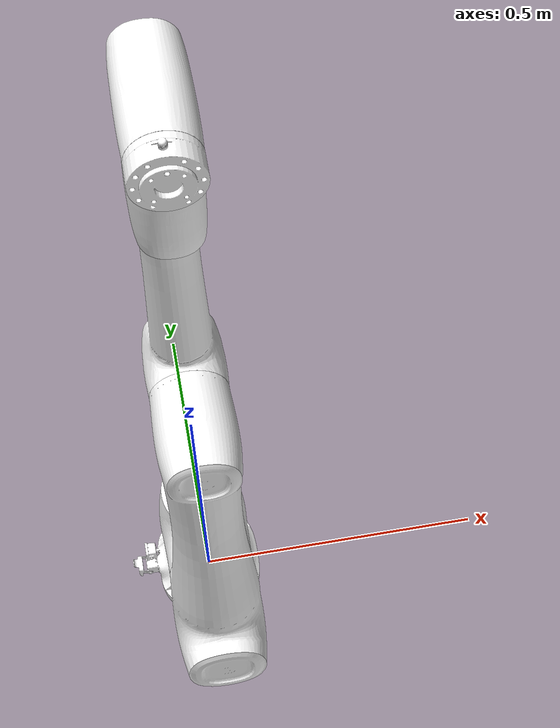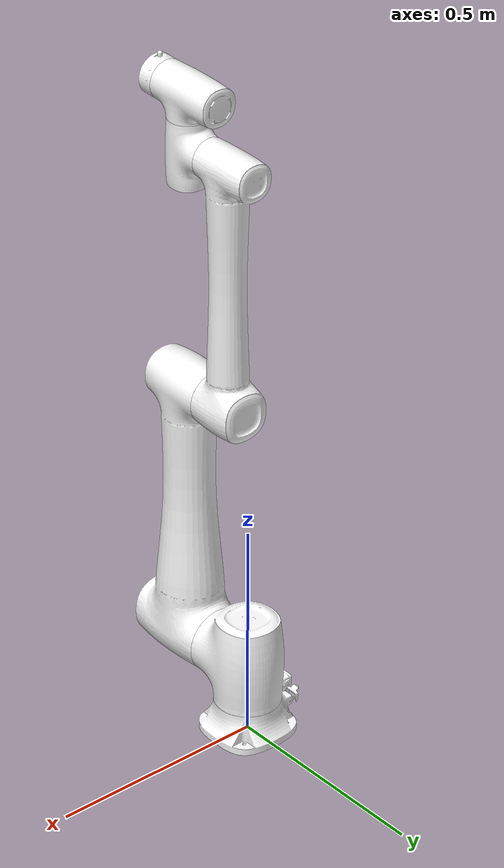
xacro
<?xml version="1.0"?>
<robot name="cr10_robot" xmlns:xacro="http://ros.org/wiki/xacro">

  <link name="dummy_link"/>
  <link
    name="base_link">
    <inertial>
      <origin
        xyz="-0.0017435 -4.7141E-06 0.032774"
        rpy="0 0 0" />
      <mass
        value="1.8265" />
      <inertia
        ixx="0.0041731"
        ixy="5.9354E-07"
        ixz="2.52E-05"
        iyy="0.0043128"
        iyz="-5.4503E-07"
        izz="0.0067702" />
    </inertial>
    <visual>
      <origin
        xyz="0 0 0"
        rpy="0 0 0" />
      <geometry>
        <mesh
          filename="file://$(find cr_description)/meshes/cr10/base_link.STL" />
      </geometry>
      <material
        name="">
        <color
          rgba="1 1 1 1" />
      </material>
    </visual>
    <collision>
      <origin
        xyz="0 0 0"
        rpy="0 0 0" />
      <geometry>
        <mesh
          filename="file://$(find cr_description)/meshes/cr10/base_link.STL" />
      </geometry>
    </collision>
  </link>
  <link  name="world"/>
<joint name="world_joint" type="fixed">
    <parent link="world" />
    <child  link="dummy_link" />
  </joint>

  <joint name="dummy_joint" type="fixed">
    <parent link="dummy_link" />
    <child  link="base_link" />
  </joint>

  <link
    name="Link1">
    <inertial>
      <origin
        xyz="-1.6635E-06 -0.010819 0.0028389"
        rpy="0 0 0" />
      <mass
        value="4.1649" />
      <inertia
        ixx="0.020714"
        ixy="-1.9343E-07"
        ixz="1.6036E-07"
        iyy="0.018824"
        iyz="-9.6731E-05"
        izz="0.014575" />
    </inertial>
    <visual>
      <origin
        xyz="0 0 0"
        rpy="0 0 0" />
      <geometry>
        <mesh
          filename="file://$(find cr_description)/meshes/cr10/Link1.STL" />
      </geometry>
      <material
        name="">
        <color
          rgba="1 1 1 1" />
      </material>
    </visual>
    <collision>
      <origin
        xyz="0 0 0"
        rpy="0 0 0" />
      <geometry>
        <mesh
          filename="file://$(find cr_description)/meshes/cr10/Link1.STL" />
      </geometry>
    </collision>
  </link>
  <joint
    name="joint1"
    type="revolute">
    <origin
      xyz="0 0 0.1765"
      rpy="0 0 0" />
    <parent
      link="base_link" />
    <child
      link="Link1" />
    <axis
      xyz="0 0 1" />
    <limit
      lower="-3.14"
      upper="3.14"
      effort="300"
      velocity="100" />
  </joint>
  <link
    name="Link2">
    <inertial>
      <origin
        xyz="-0.24631 3.5816E-07 0.19515"
        rpy="0 0 0" />
      <mass
        value="11.314" />
      <inertia
        ixx="0.033616"
        ixy="-8.2998E-07"
        ixz="-0.0033352"
        iyy="0.30683"
        iyz="-6.6457E-08"
        izz="0.29972" />
    </inertial>
    <visual>
      <origin
        xyz="0 0 0"
        rpy="0 0 0" />
      <geometry>
        <mesh
          filename="file://$(find cr_description)/meshes/cr10/Link2.STL"  />
      </geometry>
      <material
        name="">
        <color
          rgba="1 1 1 1" />
      </material>
    </visual>
    <collision>
      <origin
        xyz="0 0 0"
        rpy="0 0 0" />
      <geometry>
        <mesh
          filename="file://$(find cr_description)/meshes/cr10/Link2.STL" />
      </geometry>
    </collision>
  </link>
  <joint
    name="joint2"
    type="revolute">
    <origin
      xyz="0 0 0"
      rpy="1.5708 1.5708 0" />
    <parent
      link="Link1" />
    <child
      link="Link2" />
    <axis
      xyz="0 0 1" />
    <limit
      lower="-3.14"
      upper="3.14"
      effort="300"
      velocity="100" />
  </joint>
  <link
    name="Link3">
    <inertial>
      <origin
        xyz="-0.270855859955203 2.5144690851208E-07 0.0622960395387155"
        rpy="0 0 0" />
      <mass
        value="4.89191189064363" />
      <inertia
        ixx="0.00715720724136357"
        ixy="-5.62017408817872E-07"
        ixz="-0.00257748068989916"
        iyy="0.239673426443838"
        iyz="9.26228295895878E-08"
        izz="0.238369168055991" />
    </inertial>
    <visual>
      <origin
        xyz="0 0 0"
        rpy="0 0 0" />
      <geometry>
        <mesh
          filename="file://$(find cr_description)/meshes/cr10/Link3.STL"  />
      </geometry>
      <material
        name="">
        <color
          rgba="1 1 1 1" />
      </material>
    </visual>
    <collision>
      <origin
        xyz="0 0 0"
        rpy="0 0 0" />
      <geometry>
        <mesh
          filename="file://$(find cr_description)/meshes/cr10/Link3.STL" />
      </geometry>
    </collision>
  </link>
  <joint
    name="joint3"
    type="revolute">
    <origin
      xyz="-0.607 0 0"
      rpy="0 0 0" />
    <parent
      link="Link2" />
    <child
      link="Link3" />
    <axis
      xyz="0 0 1" />
    <limit
      lower="-2.861"
      upper="2.861"
      effort="300"
      velocity="100" />
  </joint>
  <link
    name="Link4">
    <inertial>
      <origin
        xyz="-2.53137491438456E-07 0.00798724498566683 -0.00589074229668524"
        rpy="0 0 0" />
      <mass
        value="1.16884294495796" />
      <inertia
        ixx="0.00292614933092813"
        ixy="8.20440076221281E-09"
        ixz="-8.19990423351321E-09"
        iyy="0.00150052997722543"
        iyz="-5.4492521866877E-05"
        izz="0.00273274943535585" />
    </inertial>
    <visual>
      <origin
        xyz="0 0 0"
        rpy="0 0 0" />
      <geometry>
        <mesh
          filename="file://$(find cr_description)/meshes/cr10/Link4.STL"/>
      </geometry>
      <material
        name="">
        <color
          rgba="1 1 1 1" />
      </material>
    </visual>
    <collision>
      <origin
        xyz="0 0 0"
        rpy="0 0 0" />
      <geometry>
        <mesh
          filename="file://$(find cr_description)/meshes/cr10/Link4.STL"  />
      </geometry>
    </collision>
  </link>
  <joint
    name="joint4"
    type="revolute">
    <origin
      xyz="-0.568 0 0.191"
      rpy="0 0 -1.5708" />
    <parent
      link="Link3" />
    <child
      link="Link4" />
    <axis
      xyz="0 0 1" />
    <limit
      lower="-3.14"
      upper="3.14"
      effort="300"
      velocity="100" />
  </joint>
  <link
    name="Link5">
    <inertial>
      <origin
        xyz="5.50699455951951E-07 -0.0145467578029201 -0.00454887087411437"
        rpy="0 0 0" />
      <mass
        value="1.22303084244711" />
      <inertia
        ixx="0.00337905462069531"
        ixy="3.57819902464362E-08"
        ixz="-7.51828060542842E-09"
        iyy="0.00149255573951137"
        iyz="8.41917918947542E-05"
        izz="0.00323300312341709" />
    </inertial>
    <visual>
      <origin
        xyz="0 0 0"
        rpy="0 0 0" />
      <geometry>
        <mesh
          filename="file://$(find cr_description)/meshes/cr10/Link5.STL" />
      </geometry>
      <material
        name="">
        <color
          rgba="1 1 1 1" />
      </material>
    </visual>
    <collision>
      <origin
        xyz="0 0 0"
        rpy="0 0 0" />
      <geometry>
        <mesh
          filename="file://$(find cr_description)/meshes/cr10/Link5.STL" />
      </geometry>
    </collision>
  </link>
  <joint
    name="joint5"
    type="revolute">
    <origin
      xyz="0 -0.125 0"
      rpy="1.5708 0 0" />
    <parent
      link="Link4" />
    <child
      link="Link5" />
    <axis
      xyz="0 0 1" />
    <limit
      lower="-3.14"
      upper="3.14"
      effort="300"
      velocity="100" />
  </joint>
  <link
    name="Link6">
    <inertial>
      <origin
        xyz="1.42987471244488E-10 2.29640694859867E-05 -0.0205297780389956"
        rpy="0 0 0" />
      <mass
        value="0.205439548775225" />
      <inertia
        ixx="0.000110115425573789"
        ixy="-8.21487875808426E-14"
        ixz="4.28615843947113E-14"
        iyy="0.000110662465957898"
        iyz="3.68879932665237E-08"
        izz="0.00020518429573024" />
    </inertial>
    <visual>
      <origin
        xyz="0 0 0"
        rpy="0 0 0" />
      <geometry>
        <mesh
          filename="file://$(find cr_description)/meshes/cr10/Link6.STL" />
      </geometry>
      <material
        name="">
        <color
          rgba="1 1 1 1" />
      </material>
    </visual>
    <collision>
      <origin
        xyz="0 0 0"
        rpy="0 0 0" />
      <geometry>
        <mesh
          filename="file://$(find cr_description)/meshes/cr10/Link6.STL" />
      </geometry>
    </collision>
  </link>
  <joint
    name="joint6"
    type="revolute">
    <origin
      xyz="0 0.1084 0"
      rpy="-1.5708 0 0" />
    <parent
      link="Link5" />
    <child
      link="Link6" />
    <axis
      xyz="0 0 1" />
    <limit
      lower="-6.28"
      upper="6.28"
      effort="300"
      velocity="100" />
  </joint>
 <xacro:macro name="cr10_transmission" params="joint_name">
     <transmission name="${joint_name}_trans">
       <type>transmission_interface/SimpleTransmission</type>
       <joint name="${joint_name}">
         <hardwareInterface>hardware_interface/PositionJointInterface</hardwareInterface>
       </joint>
       <actuator name="${joint_name}_motor">
         <mechanicalReduction>1</mechanicalReduction>
       </actuator>
     </transmission>
 </xacro:macro>

 <xacro:cr10_transmission joint_name="joint1"/>
 <xacro:cr10_transmission joint_name="joint2"/>
 <xacro:cr10_transmission joint_name="joint3"/>
 <xacro:cr10_transmission joint_name="joint4"/>
 <xacro:cr10_transmission joint_name="joint5"/>
 <xacro:cr10_transmission joint_name="joint6"/>
 <!-- ros_control plugin -->
 <gazebo>
     <plugin name="gazebo_ros_control" filename="libgazebo_ros_control.so">
         <robotNamespace>/cr10_robot</robotNamespace>
     </plugin>
 </gazebo>

</robot>
